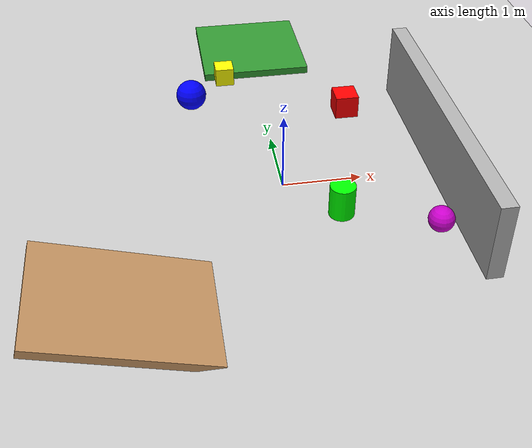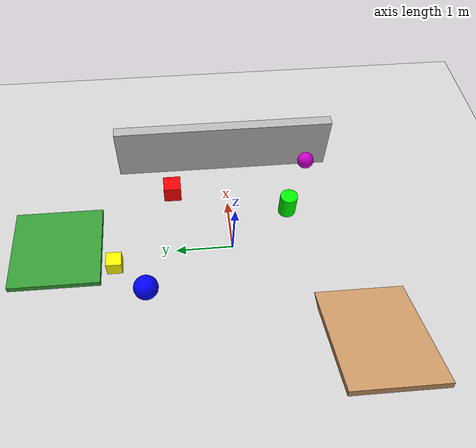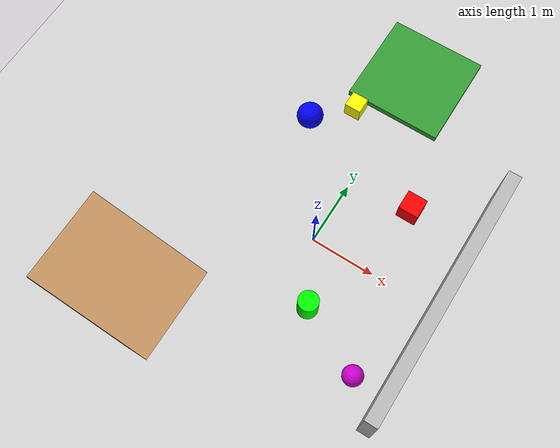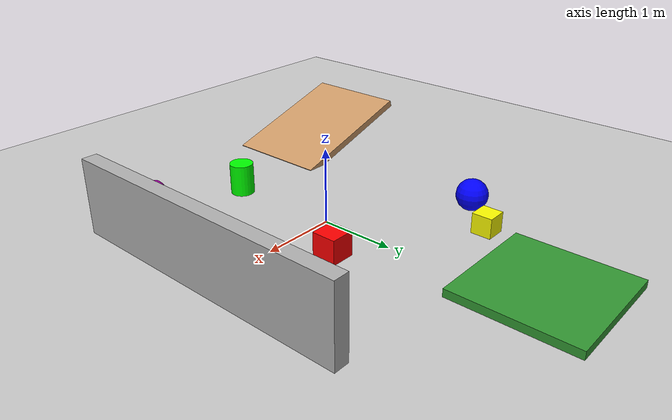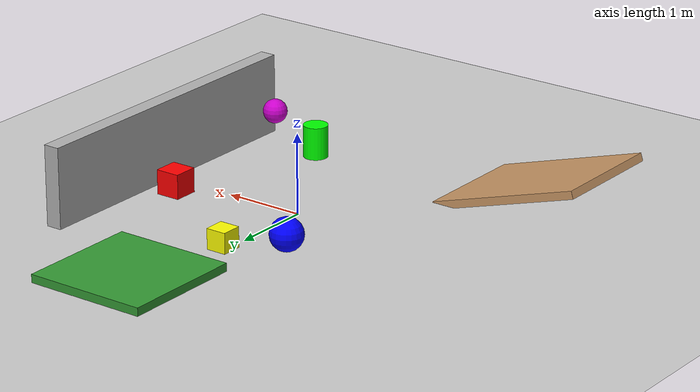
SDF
<?xml version="1.0" ?>
<sdf version="1.6">
  <world name="group_project_world">

    <!-- Physics -->
    <physics type="ode">
      <max_step_size>0.001</max_step_size>
      <real_time_factor>1.0</real_time_factor>
      <real_time_update_rate>1000</real_time_update_rate>
    </physics>

    <!-- Lighting -->
    <include>
      <uri>model://sun</uri>
    </include>

    <!-- Ground -->
    <include>
      <uri>model://ground_plane</uri>
    </include>

    <!-- Scene -->
    <scene>
      <ambient>0.5 0.5 0.5 1</ambient>
      <background>0.8 0.9 1.0 1</background>
      <shadows>true</shadows>
    </scene>

    <!-- =============== STATIC OBSTACLES (3) =============== -->

    <!-- STATIC OBSTACLE 1: Wall -->
    <model name="wall_1">
      <static>true</static>
      <pose>2.0 0.0 0.5 0 0 0</pose>
      <link name="link">
        <collision name="collision">
          <geometry>
            <box><size>0.2 4.0 1.0</size></box>
          </geometry>
        </collision>
        <visual name="visual">
          <geometry>
            <box><size>0.2 4.0 1.0</size></box>
          </geometry>
          <material>
            <ambient>0.7 0.7 0.7 1</ambient>
            <diffuse>0.7 0.7 0.7 1</diffuse>
          </material>
        </visual>
      </link>
    </model>

    <!-- STATIC OBSTACLE 2: Ramp -->
    <model name="ramp_1">
      <static>true</static>
      <pose>-2.0 -2.0 0.25 0 0.3 0</pose>
      <link name="link">
        <collision name="collision">
          <geometry>
            <box><size>2.0 1.5 0.1</size></box>
          </geometry>
        </collision>
        <visual name="visual">
          <geometry>
            <box><size>2.0 1.5 0.1</size></box>
          </geometry>
          <material>
            <ambient>0.8 0.6 0.4 1</ambient>
            <diffuse>0.8 0.6 0.4 1</diffuse>
          </material>
        </visual>
      </link>
    </model>

    <!-- STATIC OBSTACLE 3: Platform -->
    <model name="platform_1">
      <static>true</static>
      <pose>0.0 3.0 0.3 0 0 0</pose>
      <link name="link">
        <collision name="collision">
          <geometry>
            <box><size>1.5 1.5 0.1</size></box>
          </geometry>
        </collision>
        <visual name="visual">
          <geometry>
            <box><size>1.5 1.5 0.1</size></box>
          </geometry>
          <material>
            <ambient>0.2 0.6 0.2 1</ambient>
            <diffuse>0.2 0.6 0.2 1</diffuse>
          </material>
        </visual>
      </link>
    </model>

    <!-- =============== DYNAMIC OBJECTS (5) =============== -->

    <!-- Dynamic Object 1: Red Box -->
    <model name="box_red">
      <static>false</static>
      <pose>1.0 1.0 0.5 0 0 0</pose>
      <link name="link">
        <collision name="collision">
          <geometry>
            <box><size>0.3 0.3 0.3</size></box>
          </geometry>
        </collision>
        <visual name="visual">
          <geometry>
            <box><size>0.3 0.3 0.3</size></box>
          </geometry>
          <material>
            <ambient>1 0 0 1</ambient>
            <diffuse>1 0 0 1</diffuse>
          </material>
        </visual>
        <inertial>
          <mass>0.5</mass>
          <inertia>
            <ixx>0.001</ixx><iyy>0.001</iyy><izz>0.001</izz>
            <ixy>0</ixy><ixz>0</ixz><iyz>0</iyz>
          </inertia>
        </inertial>
      </link>
    </model>

    <!-- Dynamic Object 2: Blue Sphere -->
    <model name="sphere_blue">
      <static>false</static>
      <pose>-1.0 1.5 0.5 0 0 0</pose>
      <link name="link">
        <collision name="collision">
          <geometry>
            <sphere><radius>0.2</radius></sphere>
          </geometry>
        </collision>
        <visual name="visual">
          <geometry>
            <sphere><radius>0.2</radius></sphere>
          </geometry>
          <material>
            <ambient>0 0 1 1</ambient>
            <diffuse>0 0 1 1</diffuse>
          </material>
        </visual>
        <inertial>
          <mass>0.3</mass>
          <inertia>
            <ixx>0.0005</ixx><iyy>0.0005</iyy><izz>0.0005</izz>
            <ixy>0</ixy><ixz>0</ixz><iyz>0</iyz>
          </inertia>
        </inertial>
      </link>
    </model>

    <!-- Dynamic Object 3: Green Cylinder -->
    <model name="cylinder_green">
      <static>false</static>
      <pose>0.5 -1.0 0.5 0 0 0</pose>
      <link name="link">
        <collision name="collision">
          <geometry>
            <cylinder>
              <radius>0.15</radius>
              <length>0.4</length>
            </cylinder>
          </geometry>
        </collision>
        <visual name="visual">
          <geometry>
            <cylinder>
              <radius>0.15</radius>
              <length>0.4</length>
            </cylinder>
          </geometry>
          <material>
            <ambient>0 1 0 1</ambient>
            <diffuse>0 1 0 1</diffuse>
          </material>
        </visual>
        <inertial>
          <mass>0.4</mass>
          <inertia>
            <ixx>0.0008</ixx><iyy>0.0008</iyy><izz>0.0004</izz>
            <ixy>0</ixy><ixz>0</ixz><iyz>0</iyz>
          </inertia>
        </inertial>
      </link>
    </model>

    <!-- Dynamic Object 4: Yellow Box -->
    <model name="box_yellow">
      <static>false</static>
      <pose>-0.5 2.0 0.5 0 0 0</pose>
      <link name="link">
        <collision name="collision">
          <geometry>
            <box><size>0.25 0.25 0.25</size></box>
          </geometry>
        </collision>
        <visual name="visual">
          <geometry>
            <box><size>0.25 0.25 0.25</size></box>
          </geometry>
          <material>
            <ambient>1 1 0 1</ambient>
            <diffuse>1 1 0 1</diffuse>
          </material>
        </visual>
        <inertial>
          <mass>0.3</mass>
          <inertia>
            <ixx>0.0007</ixx><iyy>0.0007</iyy><izz>0.0007</izz>
            <ixy>0</ixy><ixz>0</ixz><iyz>0</iyz>
          </inertia>
        </inertial>
      </link>
    </model>

    <!-- Dynamic Object 5: Purple Sphere -->
    <model name="sphere_purple">
      <static>false</static>
      <pose>1.5 -1.5 0.5 0 0 0</pose>
      <link name="link">
        <collision name="collision">
          <geometry>
            <sphere><radius>0.15</radius></sphere>
          </geometry>
        </collision>
        <visual name="visual">
          <geometry>
            <sphere><radius>0.15</radius></sphere>
          </geometry>
          <material>
            <ambient>0.8 0 0.8 1</ambient>
            <diffuse>0.8 0 0.8 1</diffuse>
          </material>
        </visual>
        <inertial>
          <mass>0.25</mass>
          <inertia>
            <ixx>0.0003</ixx><iyy>0.0003</iyy><izz>0.0003</izz>
            <ixy>0</ixy><ixz>0</ixz><iyz>0</iyz>
          </inertia>
        </inertial>
      </link>
    </model>

    <!-- Optional: Camera View -->
    <gui fullscreen='0'>
      <camera name='user_camera'>
        <pose>5.0 -5.0 3.0 0 0.4 2.356</pose>
        <view_controller>orbit</view_controller>
      </camera>
    </gui>

  </world>
</sdf>
